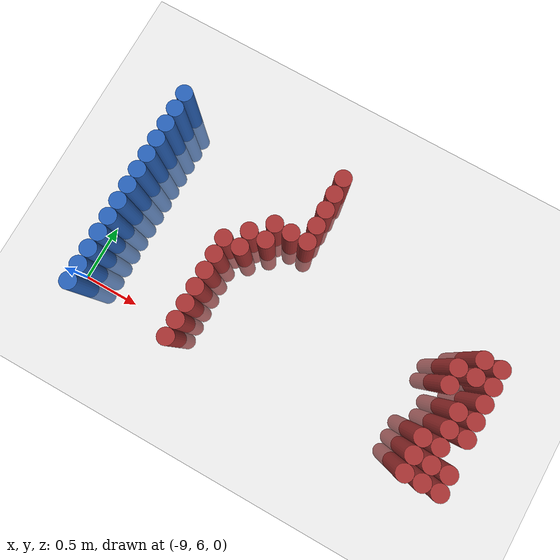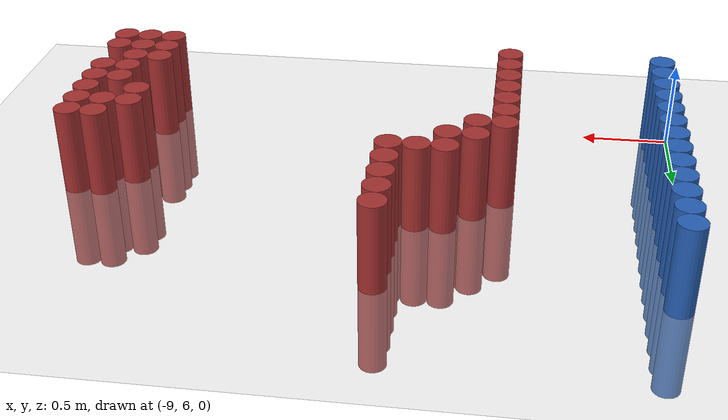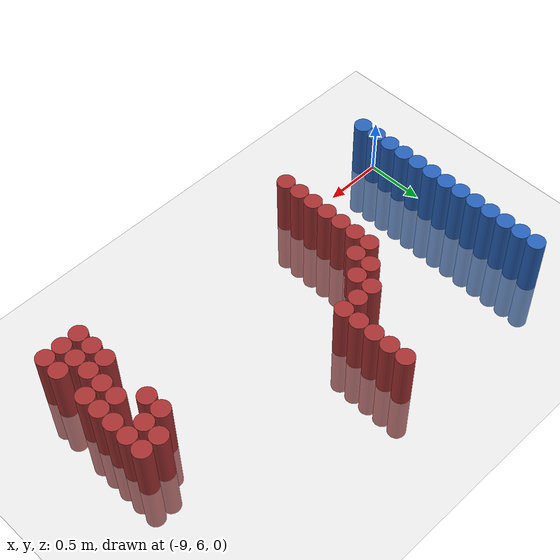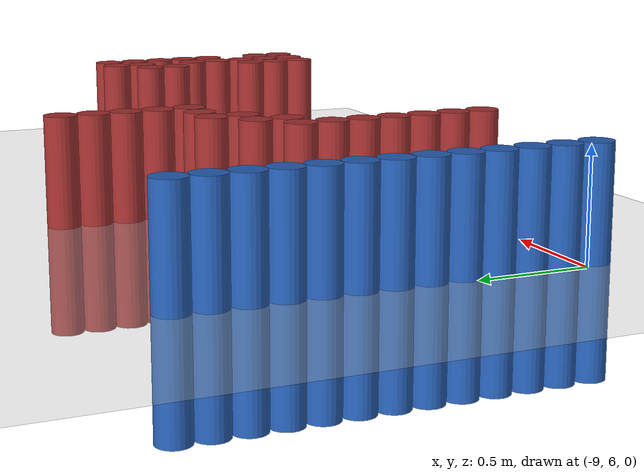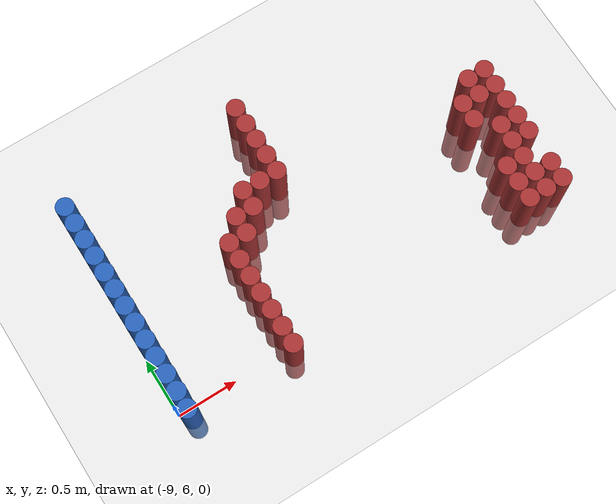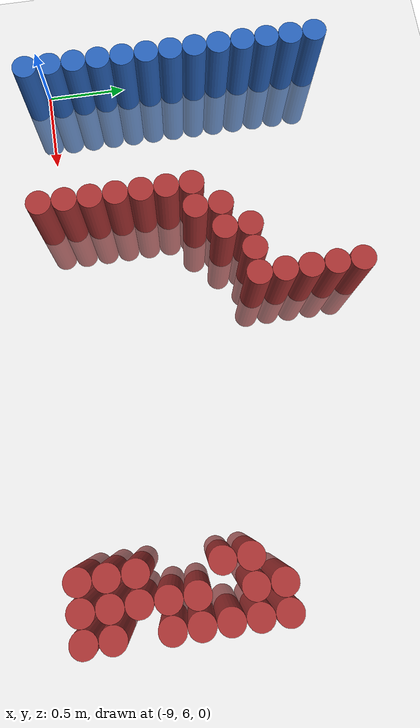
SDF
<sdf version="1.6">
 <world name="default">
  <model name="ground_plane">
   <static>1</static>
   <link name="link">
    <collision name="collision">
     <geometry><plane><normal>0 0 1</normal><size>100 100</size></plane></geometry>
     <surface><friction><ode><mu>100</mu><mu2>50</mu2></ode></friction></surface>
    </collision>
    <visual name="visual">
     <cast_shadows>0</cast_shadows>
     <geometry><plane><normal>0 0 1</normal><size>100 100</size></plane></geometry>
     <material>
      <script><uri>file://media/materials/scripts/gazebo.material</uri><name>Gazebo/Grey</name></script>
     </material>
    </visual>
   </link>
  </model>
  <model name="unit_cylinder_130">
   <static>1</static>
   <pose>-8.925000 5.925000 0.000000 0.000000 0.000000 0.000000</pose>
   <link name="link">
    <inertial>
     <mass>1</mass>
     <inertia><ixx>0.145833</ixx><ixy>0</ixy><ixz>0</ixz><iyy>0.145833</iyy><iyz>0</iyz><izz>0.125</izz></inertia>
    </inertial>
    <collision name="collision">
     <geometry><cylinder><radius>0.075000</radius><length>1</length></cylinder></geometry>
    </collision>
    <visual name="visual">
     <geometry><cylinder><radius>0.075000</radius><length>1</length></cylinder></geometry>
     <material>
      <ambient>0.152000 0.379000 0.720000 1</ambient>
      <diffuse>0.152000 0.379000 0.720000 1</diffuse>
     </material>
     <material>
      <script><name>Gazebo/Grey</name><uri>file://media/materials/scripts/gazebo.material</uri></script>
     </material>
    </visual>
   </link>
  </model>
  <model name="unit_cylinder_131">
   <static>1</static>
   <pose>-8.925000 6.075000 0.000000 0.000000 0.000000 0.000000</pose>
   <link name="link">
    <inertial>
     <mass>1</mass>
     <inertia><ixx>0.145833</ixx><ixy>0</ixy><ixz>0</ixz><iyy>0.145833</iyy><iyz>0</iyz><izz>0.125</izz></inertia>
    </inertial>
    <collision name="collision">
     <geometry><cylinder><radius>0.075000</radius><length>1</length></cylinder></geometry>
    </collision>
    <visual name="visual">
     <geometry><cylinder><radius>0.075000</radius><length>1</length></cylinder></geometry>
     <material>
      <ambient>0.152000 0.379000 0.720000 1</ambient>
      <diffuse>0.152000 0.379000 0.720000 1</diffuse>
     </material>
     <material>
      <script><name>Gazebo/Grey</name><uri>file://media/materials/scripts/gazebo.material</uri></script>
     </material>
    </visual>
   </link>
  </model>
  <model name="unit_cylinder_132">
   <static>1</static>
   <pose>-8.925000 6.225000 0.000000 0.000000 0.000000 0.000000</pose>
   <link name="link">
    <inertial>
     <mass>1</mass>
     <inertia><ixx>0.145833</ixx><ixy>0</ixy><ixz>0</ixz><iyy>0.145833</iyy><iyz>0</iyz><izz>0.125</izz></inertia>
    </inertial>
    <collision name="collision">
     <geometry><cylinder><radius>0.075000</radius><length>1</length></cylinder></geometry>
    </collision>
    <visual name="visual">
     <geometry><cylinder><radius>0.075000</radius><length>1</length></cylinder></geometry>
     <material>
      <ambient>0.152000 0.379000 0.720000 1</ambient>
      <diffuse>0.152000 0.379000 0.720000 1</diffuse>
     </material>
     <material>
      <script><name>Gazebo/Grey</name><uri>file://media/materials/scripts/gazebo.material</uri></script>
     </material>
    </visual>
   </link>
  </model>
  <model name="unit_cylinder_133">
   <static>1</static>
   <pose>-8.925000 6.375000 0.000000 0.000000 0.000000 0.000000</pose>
   <link name="link">
    <inertial>
     <mass>1</mass>
     <inertia><ixx>0.145833</ixx><ixy>0</ixy><ixz>0</ixz><iyy>0.145833</iyy><iyz>0</iyz><izz>0.125</izz></inertia>
    </inertial>
    <collision name="collision">
     <geometry><cylinder><radius>0.075000</radius><length>1</length></cylinder></geometry>
    </collision>
    <visual name="visual">
     <geometry><cylinder><radius>0.075000</radius><length>1</length></cylinder></geometry>
     <material>
      <ambient>0.152000 0.379000 0.720000 1</ambient>
      <diffuse>0.152000 0.379000 0.720000 1</diffuse>
     </material>
     <material>
      <script><name>Gazebo/Grey</name><uri>file://media/materials/scripts/gazebo.material</uri></script>
     </material>
    </visual>
   </link>
  </model>
  <model name="unit_cylinder_134">
   <static>1</static>
   <pose>-8.925000 6.525000 0.000000 0.000000 0.000000 0.000000</pose>
   <link name="link">
    <inertial>
     <mass>1</mass>
     <inertia><ixx>0.145833</ixx><ixy>0</ixy><ixz>0</ixz><iyy>0.145833</iyy><iyz>0</iyz><izz>0.125</izz></inertia>
    </inertial>
    <collision name="collision">
     <geometry><cylinder><radius>0.075000</radius><length>1</length></cylinder></geometry>
    </collision>
    <visual name="visual">
     <geometry><cylinder><radius>0.075000</radius><length>1</length></cylinder></geometry>
     <material>
      <ambient>0.152000 0.379000 0.720000 1</ambient>
      <diffuse>0.152000 0.379000 0.720000 1</diffuse>
     </material>
     <material>
      <script><name>Gazebo/Grey</name><uri>file://media/materials/scripts/gazebo.material</uri></script>
     </material>
    </visual>
   </link>
  </model>
  <model name="unit_cylinder_135">
   <static>1</static>
   <pose>-8.925000 6.675000 0.000000 0.000000 0.000000 0.000000</pose>
   <link name="link">
    <inertial>
     <mass>1</mass>
     <inertia><ixx>0.145833</ixx><ixy>0</ixy><ixz>0</ixz><iyy>0.145833</iyy><iyz>0</iyz><izz>0.125</izz></inertia>
    </inertial>
    <collision name="collision">
     <geometry><cylinder><radius>0.075000</radius><length>1</length></cylinder></geometry>
    </collision>
    <visual name="visual">
     <geometry><cylinder><radius>0.075000</radius><length>1</length></cylinder></geometry>
     <material>
      <ambient>0.152000 0.379000 0.720000 1</ambient>
      <diffuse>0.152000 0.379000 0.720000 1</diffuse>
     </material>
     <material>
      <script><name>Gazebo/Grey</name><uri>file://media/materials/scripts/gazebo.material</uri></script>
     </material>
    </visual>
   </link>
  </model>
  <model name="unit_cylinder_136">
   <static>1</static>
   <pose>-8.925000 6.825000 0.000000 0.000000 0.000000 0.000000</pose>
   <link name="link">
    <inertial>
     <mass>1</mass>
     <inertia><ixx>0.145833</ixx><ixy>0</ixy><ixz>0</ixz><iyy>0.145833</iyy><iyz>0</iyz><izz>0.125</izz></inertia>
    </inertial>
    <collision name="collision">
     <geometry><cylinder><radius>0.075000</radius><length>1</length></cylinder></geometry>
    </collision>
    <visual name="visual">
     <geometry><cylinder><radius>0.075000</radius><length>1</length></cylinder></geometry>
     <material>
      <ambient>0.152000 0.379000 0.720000 1</ambient>
      <diffuse>0.152000 0.379000 0.720000 1</diffuse>
     </material>
     <material>
      <script><name>Gazebo/Grey</name><uri>file://media/materials/scripts/gazebo.material</uri></script>
     </material>
    </visual>
   </link>
  </model>
  <model name="unit_cylinder_137">
   <static>1</static>
   <pose>-8.925000 6.975000 0.000000 0.000000 0.000000 0.000000</pose>
   <link name="link">
    <inertial>
     <mass>1</mass>
     <inertia><ixx>0.145833</ixx><ixy>0</ixy><ixz>0</ixz><iyy>0.145833</iyy><iyz>0</iyz><izz>0.125</izz></inertia>
    </inertial>
    <collision name="collision">
     <geometry><cylinder><radius>0.075000</radius><length>1</length></cylinder></geometry>
    </collision>
    <visual name="visual">
     <geometry><cylinder><radius>0.075000</radius><length>1</length></cylinder></geometry>
     <material>
      <ambient>0.152000 0.379000 0.720000 1</ambient>
      <diffuse>0.152000 0.379000 0.720000 1</diffuse>
     </material>
     <material>
      <script><name>Gazebo/Grey</name><uri>file://media/materials/scripts/gazebo.material</uri></script>
     </material>
    </visual>
   </link>
  </model>
  <model name="unit_cylinder_138">
   <static>1</static>
   <pose>-8.925000 7.125000 0.000000 0.000000 0.000000 0.000000</pose>
   <link name="link">
    <inertial>
     <mass>1</mass>
     <inertia><ixx>0.145833</ixx><ixy>0</ixy><ixz>0</ixz><iyy>0.145833</iyy><iyz>0</iyz><izz>0.125</izz></inertia>
    </inertial>
    <collision name="collision">
     <geometry><cylinder><radius>0.075000</radius><length>1</length></cylinder></geometry>
    </collision>
    <visual name="visual">
     <geometry><cylinder><radius>0.075000</radius><length>1</length></cylinder></geometry>
     <material>
      <ambient>0.152000 0.379000 0.720000 1</ambient>
      <diffuse>0.152000 0.379000 0.720000 1</diffuse>
     </material>
     <material>
      <script><name>Gazebo/Grey</name><uri>file://media/materials/scripts/gazebo.material</uri></script>
     </material>
    </visual>
   </link>
  </model>
  <model name="unit_cylinder_139">
   <static>1</static>
   <pose>-8.925000 7.275000 0.000000 0.000000 0.000000 0.000000</pose>
   <link name="link">
    <inertial>
     <mass>1</mass>
     <inertia><ixx>0.145833</ixx><ixy>0</ixy><ixz>0</ixz><iyy>0.145833</iyy><iyz>0</iyz><izz>0.125</izz></inertia>
    </inertial>
    <collision name="collision">
     <geometry><cylinder><radius>0.075000</radius><length>1</length></cylinder></geometry>
    </collision>
    <visual name="visual">
     <geometry><cylinder><radius>0.075000</radius><length>1</length></cylinder></geometry>
     <material>
      <ambient>0.152000 0.379000 0.720000 1</ambient>
      <diffuse>0.152000 0.379000 0.720000 1</diffuse>
     </material>
     <material>
      <script><name>Gazebo/Grey</name><uri>file://media/materials/scripts/gazebo.material</uri></script>
     </material>
    </visual>
   </link>
  </model>
  <model name="unit_cylinder_140">
   <static>1</static>
   <pose>-8.925000 7.425000 0.000000 0.000000 0.000000 0.000000</pose>
   <link name="link">
    <inertial>
     <mass>1</mass>
     <inertia><ixx>0.145833</ixx><ixy>0</ixy><ixz>0</ixz><iyy>0.145833</iyy><iyz>0</iyz><izz>0.125</izz></inertia>
    </inertial>
    <collision name="collision">
     <geometry><cylinder><radius>0.075000</radius><length>1</length></cylinder></geometry>
    </collision>
    <visual name="visual">
     <geometry><cylinder><radius>0.075000</radius><length>1</length></cylinder></geometry>
     <material>
      <ambient>0.152000 0.379000 0.720000 1</ambient>
      <diffuse>0.152000 0.379000 0.720000 1</diffuse>
     </material>
     <material>
      <script><name>Gazebo/Grey</name><uri>file://media/materials/scripts/gazebo.material</uri></script>
     </material>
    </visual>
   </link>
  </model>
  <model name="unit_cylinder_141">
   <static>1</static>
   <pose>-8.925000 7.575000 0.000000 0.000000 0.000000 0.000000</pose>
   <link name="link">
    <inertial>
     <mass>1</mass>
     <inertia><ixx>0.145833</ixx><ixy>0</ixy><ixz>0</ixz><iyy>0.145833</iyy><iyz>0</iyz><izz>0.125</izz></inertia>
    </inertial>
    <collision name="collision">
     <geometry><cylinder><radius>0.075000</radius><length>1</length></cylinder></geometry>
    </collision>
    <visual name="visual">
     <geometry><cylinder><radius>0.075000</radius><length>1</length></cylinder></geometry>
     <material>
      <ambient>0.152000 0.379000 0.720000 1</ambient>
      <diffuse>0.152000 0.379000 0.720000 1</diffuse>
     </material>
     <material>
      <script><name>Gazebo/Grey</name><uri>file://media/materials/scripts/gazebo.material</uri></script>
     </material>
    </visual>
   </link>
  </model>
  <model name="unit_cylinder_142">
   <static>1</static>
   <pose>-8.925000 7.725000 0.000000 0.000000 0.000000 0.000000</pose>
   <link name="link">
    <inertial>
     <mass>1</mass>
     <inertia><ixx>0.145833</ixx><ixy>0</ixy><ixz>0</ixz><iyy>0.145833</iyy><iyz>0</iyz><izz>0.125</izz></inertia>
    </inertial>
    <collision name="collision">
     <geometry><cylinder><radius>0.075000</radius><length>1</length></cylinder></geometry>
    </collision>
    <visual name="visual">
     <geometry><cylinder><radius>0.075000</radius><length>1</length></cylinder></geometry>
     <material>
      <ambient>0.152000 0.379000 0.720000 1</ambient>
      <diffuse>0.152000 0.379000 0.720000 1</diffuse>
     </material>
     <material>
      <script><name>Gazebo/Grey</name><uri>file://media/materials/scripts/gazebo.material</uri></script>
     </material>
    </visual>
   </link>
  </model>
  <model name="unit_cylinder_170">
   <static>1</static>
   <pose>-8.025000 5.925000 0.000000 0.000000 0.000000 0.000000</pose>
   <link name="link">
    <inertial>
     <mass>1</mass>
     <inertia><ixx>0.145833</ixx><ixy>0</ixy><ixz>0</ixz><iyy>0.145833</iyy><iyz>0</iyz><izz>0.125</izz></inertia>
    </inertial>
    <collision name="collision">
     <geometry><cylinder><radius>0.075000</radius><length>1</length></cylinder></geometry>
    </collision>
    <visual name="visual">
     <geometry><cylinder><radius>0.075000</radius><length>1</length></cylinder></geometry>
     <material>
      <ambient>0.648000 0.192000 0.192000 1</ambient>
      <diffuse>0.648000 0.192000 0.192000 1</diffuse>
     </material>
     <material>
      <script><name>Gazebo/Grey</name><uri>file://media/materials/scripts/gazebo.material</uri></script>
     </material>
    </visual>
   </link>
  </model>
  <model name="unit_cylinder_171">
   <static>1</static>
   <pose>-8.025000 6.075000 0.000000 0.000000 0.000000 0.000000</pose>
   <link name="link">
    <inertial>
     <mass>1</mass>
     <inertia><ixx>0.145833</ixx><ixy>0</ixy><ixz>0</ixz><iyy>0.145833</iyy><iyz>0</iyz><izz>0.125</izz></inertia>
    </inertial>
    <collision name="collision">
     <geometry><cylinder><radius>0.075000</radius><length>1</length></cylinder></geometry>
    </collision>
    <visual name="visual">
     <geometry><cylinder><radius>0.075000</radius><length>1</length></cylinder></geometry>
     <material>
      <ambient>0.648000 0.192000 0.192000 1</ambient>
      <diffuse>0.648000 0.192000 0.192000 1</diffuse>
     </material>
     <material>
      <script><name>Gazebo/Grey</name><uri>file://media/materials/scripts/gazebo.material</uri></script>
     </material>
    </visual>
   </link>
  </model>
  <model name="unit_cylinder_172">
   <static>1</static>
   <pose>-8.025000 6.225000 0.000000 0.000000 0.000000 0.000000</pose>
   <link name="link">
    <inertial>
     <mass>1</mass>
     <inertia><ixx>0.145833</ixx><ixy>0</ixy><ixz>0</ixz><iyy>0.145833</iyy><iyz>0</iyz><izz>0.125</izz></inertia>
    </inertial>
    <collision name="collision">
     <geometry><cylinder><radius>0.075000</radius><length>1</length></cylinder></geometry>
    </collision>
    <visual name="visual">
     <geometry><cylinder><radius>0.075000</radius><length>1</length></cylinder></geometry>
     <material>
      <ambient>0.648000 0.192000 0.192000 1</ambient>
      <diffuse>0.648000 0.192000 0.192000 1</diffuse>
     </material>
     <material>
      <script><name>Gazebo/Grey</name><uri>file://media/materials/scripts/gazebo.material</uri></script>
     </material>
    </visual>
   </link>
  </model>
  <model name="unit_cylinder_173">
   <static>1</static>
   <pose>-8.025000 6.375000 0.000000 0.000000 0.000000 0.000000</pose>
   <link name="link">
    <inertial>
     <mass>1</mass>
     <inertia><ixx>0.145833</ixx><ixy>0</ixy><ixz>0</ixz><iyy>0.145833</iyy><iyz>0</iyz><izz>0.125</izz></inertia>
    </inertial>
    <collision name="collision">
     <geometry><cylinder><radius>0.075000</radius><length>1</length></cylinder></geometry>
    </collision>
    <visual name="visual">
     <geometry><cylinder><radius>0.075000</radius><length>1</length></cylinder></geometry>
     <material>
      <ambient>0.648000 0.192000 0.192000 1</ambient>
      <diffuse>0.648000 0.192000 0.192000 1</diffuse>
     </material>
     <material>
      <script><name>Gazebo/Grey</name><uri>file://media/materials/scripts/gazebo.material</uri></script>
     </material>
    </visual>
   </link>
  </model>
  <model name="unit_cylinder_174">
   <static>1</static>
   <pose>-8.025000 6.525000 0.000000 0.000000 0.000000 0.000000</pose>
   <link name="link">
    <inertial>
     <mass>1</mass>
     <inertia><ixx>0.145833</ixx><ixy>0</ixy><ixz>0</ixz><iyy>0.145833</iyy><iyz>0</iyz><izz>0.125</izz></inertia>
    </inertial>
    <collision name="collision">
     <geometry><cylinder><radius>0.075000</radius><length>1</length></cylinder></geometry>
    </collision>
    <visual name="visual">
     <geometry><cylinder><radius>0.075000</radius><length>1</length></cylinder></geometry>
     <material>
      <ambient>0.648000 0.192000 0.192000 1</ambient>
      <diffuse>0.648000 0.192000 0.192000 1</diffuse>
     </material>
     <material>
      <script><name>Gazebo/Grey</name><uri>file://media/materials/scripts/gazebo.material</uri></script>
     </material>
    </visual>
   </link>
  </model>
  <model name="unit_cylinder_175">
   <static>1</static>
   <pose>-8.025000 6.675000 0.000000 0.000000 0.000000 0.000000</pose>
   <link name="link">
    <inertial>
     <mass>1</mass>
     <inertia><ixx>0.145833</ixx><ixy>0</ixy><ixz>0</ixz><iyy>0.145833</iyy><iyz>0</iyz><izz>0.125</izz></inertia>
    </inertial>
    <collision name="collision">
     <geometry><cylinder><radius>0.075000</radius><length>1</length></cylinder></geometry>
    </collision>
    <visual name="visual">
     <geometry><cylinder><radius>0.075000</radius><length>1</length></cylinder></geometry>
     <material>
      <ambient>0.648000 0.192000 0.192000 1</ambient>
      <diffuse>0.648000 0.192000 0.192000 1</diffuse>
     </material>
     <material>
      <script><name>Gazebo/Grey</name><uri>file://media/materials/scripts/gazebo.material</uri></script>
     </material>
    </visual>
   </link>
  </model>
  <model name="unit_cylinder_176">
   <static>1</static>
   <pose>-8.025000 6.825000 0.000000 0.000000 0.000000 0.000000</pose>
   <link name="link">
    <inertial>
     <mass>1</mass>
     <inertia><ixx>0.145833</ixx><ixy>0</ixy><ixz>0</ixz><iyy>0.145833</iyy><iyz>0</iyz><izz>0.125</izz></inertia>
    </inertial>
    <collision name="collision">
     <geometry><cylinder><radius>0.075000</radius><length>1</length></cylinder></geometry>
    </collision>
    <visual name="visual">
     <geometry><cylinder><radius>0.075000</radius><length>1</length></cylinder></geometry>
     <material>
      <ambient>0.648000 0.192000 0.192000 1</ambient>
      <diffuse>0.648000 0.192000 0.192000 1</diffuse>
     </material>
     <material>
      <script><name>Gazebo/Grey</name><uri>file://media/materials/scripts/gazebo.material</uri></script>
     </material>
    </visual>
   </link>
  </model>
  <model name="unit_cylinder_178">
   <static>1</static>
   <pose>-7.875000 6.825000 0.000000 0.000000 0.000000 0.000000</pose>
   <link name="link">
    <inertial>
     <mass>1</mass>
     <inertia><ixx>0.145833</ixx><ixy>0</ixy><ixz>0</ixz><iyy>0.145833</iyy><iyz>0</iyz><izz>0.125</izz></inertia>
    </inertial>
    <collision name="collision">
     <geometry><cylinder><radius>0.075000</radius><length>1</length></cylinder></geometry>
    </collision>
    <visual name="visual">
     <geometry><cylinder><radius>0.075000</radius><length>1</length></cylinder></geometry>
     <material>
      <ambient>0.648000 0.192000 0.192000 1</ambient>
      <diffuse>0.648000 0.192000 0.192000 1</diffuse>
     </material>
     <material>
      <script><name>Gazebo/Grey</name><uri>file://media/materials/scripts/gazebo.material</uri></script>
     </material>
    </visual>
   </link>
  </model>
  <model name="unit_cylinder_179">
   <static>1</static>
   <pose>-7.875000 6.975000 0.000000 0.000000 0.000000 0.000000</pose>
   <link name="link">
    <inertial>
     <mass>1</mass>
     <inertia><ixx>0.145833</ixx><ixy>0</ixy><ixz>0</ixz><iyy>0.145833</iyy><iyz>0</iyz><izz>0.125</izz></inertia>
    </inertial>
    <collision name="collision">
     <geometry><cylinder><radius>0.075000</radius><length>1</length></cylinder></geometry>
    </collision>
    <visual name="visual">
     <geometry><cylinder><radius>0.075000</radius><length>1</length></cylinder></geometry>
     <material>
      <ambient>0.648000 0.192000 0.192000 1</ambient>
      <diffuse>0.648000 0.192000 0.192000 1</diffuse>
     </material>
     <material>
      <script><name>Gazebo/Grey</name><uri>file://media/materials/scripts/gazebo.material</uri></script>
     </material>
    </visual>
   </link>
  </model>
  <model name="unit_cylinder_181">
   <static>1</static>
   <pose>-7.725000 6.975000 0.000000 0.000000 0.000000 0.000000</pose>
   <link name="link">
    <inertial>
     <mass>1</mass>
     <inertia><ixx>0.145833</ixx><ixy>0</ixy><ixz>0</ixz><iyy>0.145833</iyy><iyz>0</iyz><izz>0.125</izz></inertia>
    </inertial>
    <collision name="collision">
     <geometry><cylinder><radius>0.075000</radius><length>1</length></cylinder></geometry>
    </collision>
    <visual name="visual">
     <geometry><cylinder><radius>0.075000</radius><length>1</length></cylinder></geometry>
     <material>
      <ambient>0.648000 0.192000 0.192000 1</ambient>
      <diffuse>0.648000 0.192000 0.192000 1</diffuse>
     </material>
     <material>
      <script><name>Gazebo/Grey</name><uri>file://media/materials/scripts/gazebo.material</uri></script>
     </material>
    </visual>
   </link>
  </model>
  <model name="unit_cylinder_182">
   <static>1</static>
   <pose>-7.725000 7.125000 0.000000 0.000000 0.000000 0.000000</pose>
   <link name="link">
    <inertial>
     <mass>1</mass>
     <inertia><ixx>0.145833</ixx><ixy>0</ixy><ixz>0</ixz><iyy>0.145833</iyy><iyz>0</iyz><izz>0.125</izz></inertia>
    </inertial>
    <collision name="collision">
     <geometry><cylinder><radius>0.075000</radius><length>1</length></cylinder></geometry>
    </collision>
    <visual name="visual">
     <geometry><cylinder><radius>0.075000</radius><length>1</length></cylinder></geometry>
     <material>
      <ambient>0.648000 0.192000 0.192000 1</ambient>
      <diffuse>0.648000 0.192000 0.192000 1</diffuse>
     </material>
     <material>
      <script><name>Gazebo/Grey</name><uri>file://media/materials/scripts/gazebo.material</uri></script>
     </material>
    </visual>
   </link>
  </model>
  <model name="unit_cylinder_184">
   <static>1</static>
   <pose>-7.575000 7.125000 0.000000 0.000000 0.000000 0.000000</pose>
   <link name="link">
    <inertial>
     <mass>1</mass>
     <inertia><ixx>0.145833</ixx><ixy>0</ixy><ixz>0</ixz><iyy>0.145833</iyy><iyz>0</iyz><izz>0.125</izz></inertia>
    </inertial>
    <collision name="collision">
     <geometry><cylinder><radius>0.075000</radius><length>1</length></cylinder></geometry>
    </collision>
    <visual name="visual">
     <geometry><cylinder><radius>0.075000</radius><length>1</length></cylinder></geometry>
     <material>
      <ambient>0.648000 0.192000 0.192000 1</ambient>
      <diffuse>0.648000 0.192000 0.192000 1</diffuse>
     </material>
     <material>
      <script><name>Gazebo/Grey</name><uri>file://media/materials/scripts/gazebo.material</uri></script>
     </material>
    </visual>
   </link>
  </model>
  <model name="unit_cylinder_186">
   <static>1</static>
   <pose>-7.425000 7.125000 0.000000 0.000000 0.000000 0.000000</pose>
   <link name="link">
    <inertial>
     <mass>1</mass>
     <inertia><ixx>0.145833</ixx><ixy>0</ixy><ixz>0</ixz><iyy>0.145833</iyy><iyz>0</iyz><izz>0.125</izz></inertia>
    </inertial>
    <collision name="collision">
     <geometry><cylinder><radius>0.075000</radius><length>1</length></cylinder></geometry>
    </collision>
    <visual name="visual">
     <geometry><cylinder><radius>0.075000</radius><length>1</length></cylinder></geometry>
     <material>
      <ambient>0.648000 0.192000 0.192000 1</ambient>
      <diffuse>0.648000 0.192000 0.192000 1</diffuse>
     </material>
     <material>
      <script><name>Gazebo/Grey</name><uri>file://media/materials/scripts/gazebo.material</uri></script>
     </material>
    </visual>
   </link>
  </model>
  <model name="unit_cylinder_187">
   <static>1</static>
   <pose>-7.425000 7.275000 0.000000 0.000000 0.000000 0.000000</pose>
   <link name="link">
    <inertial>
     <mass>1</mass>
     <inertia><ixx>0.145833</ixx><ixy>0</ixy><ixz>0</ixz><iyy>0.145833</iyy><iyz>0</iyz><izz>0.125</izz></inertia>
    </inertial>
    <collision name="collision">
     <geometry><cylinder><radius>0.075000</radius><length>1</length></cylinder></geometry>
    </collision>
    <visual name="visual">
     <geometry><cylinder><radius>0.075000</radius><length>1</length></cylinder></geometry>
     <material>
      <ambient>0.648000 0.192000 0.192000 1</ambient>
      <diffuse>0.648000 0.192000 0.192000 1</diffuse>
     </material>
     <material>
      <script><name>Gazebo/Grey</name><uri>file://media/materials/scripts/gazebo.material</uri></script>
     </material>
    </visual>
   </link>
  </model>
  <model name="unit_cylinder_188">
   <static>1</static>
   <pose>-7.425000 7.425000 0.000000 0.000000 0.000000 0.000000</pose>
   <link name="link">
    <inertial>
     <mass>1</mass>
     <inertia><ixx>0.145833</ixx><ixy>0</ixy><ixz>0</ixz><iyy>0.145833</iyy><iyz>0</iyz><izz>0.125</izz></inertia>
    </inertial>
    <collision name="collision">
     <geometry><cylinder><radius>0.075000</radius><length>1</length></cylinder></geometry>
    </collision>
    <visual name="visual">
     <geometry><cylinder><radius>0.075000</radius><length>1</length></cylinder></geometry>
     <material>
      <ambient>0.648000 0.192000 0.192000 1</ambient>
      <diffuse>0.648000 0.192000 0.192000 1</diffuse>
     </material>
     <material>
      <script><name>Gazebo/Grey</name><uri>file://media/materials/scripts/gazebo.material</uri></script>
     </material>
    </visual>
   </link>
  </model>
  <model name="unit_cylinder_189">
   <static>1</static>
   <pose>-7.425000 7.575000 0.000000 0.000000 0.000000 0.000000</pose>
   <link name="link">
    <inertial>
     <mass>1</mass>
     <inertia><ixx>0.145833</ixx><ixy>0</ixy><ixz>0</ixz><iyy>0.145833</iyy><iyz>0</iyz><izz>0.125</izz></inertia>
    </inertial>
    <collision name="collision">
     <geometry><cylinder><radius>0.075000</radius><length>1</length></cylinder></geometry>
    </collision>
    <visual name="visual">
     <geometry><cylinder><radius>0.075000</radius><length>1</length></cylinder></geometry>
     <material>
      <ambient>0.648000 0.192000 0.192000 1</ambient>
      <diffuse>0.648000 0.192000 0.192000 1</diffuse>
     </material>
     <material>
      <script><name>Gazebo/Grey</name><uri>file://media/materials/scripts/gazebo.material</uri></script>
     </material>
    </visual>
   </link>
  </model>
  <model name="unit_cylinder_190">
   <static>1</static>
   <pose>-7.425000 7.725000 0.000000 0.000000 0.000000 0.000000</pose>
   <link name="link">
    <inertial>
     <mass>1</mass>
     <inertia><ixx>0.145833</ixx><ixy>0</ixy><ixz>0</ixz><iyy>0.145833</iyy><iyz>0</iyz><izz>0.125</izz></inertia>
    </inertial>
    <collision name="collision">
     <geometry><cylinder><radius>0.075000</radius><length>1</length></cylinder></geometry>
    </collision>
    <visual name="visual">
     <geometry><cylinder><radius>0.075000</radius><length>1</length></cylinder></geometry>
     <material>
      <ambient>0.648000 0.192000 0.192000 1</ambient>
      <diffuse>0.648000 0.192000 0.192000 1</diffuse>
     </material>
     <material>
      <script><name>Gazebo/Grey</name><uri>file://media/materials/scripts/gazebo.material</uri></script>
     </material>
    </visual>
   </link>
  </model>
  <model name="unit_cylinder_222">
   <static>1</static>
   <pose>-5.925000 5.925000 0.000000 0.000000 0.000000 0.000000</pose>
   <link name="link">
    <inertial>
     <mass>1</mass>
     <inertia><ixx>0.145833</ixx><ixy>0</ixy><ixz>0</ixz><iyy>0.145833</iyy><iyz>0</iyz><izz>0.125</izz></inertia>
    </inertial>
    <collision name="collision">
     <geometry><cylinder><radius>0.075000</radius><length>1</length></cylinder></geometry>
    </collision>
    <visual name="visual">
     <geometry><cylinder><radius>0.075000</radius><length>1</length></cylinder></geometry>
     <material>
      <ambient>0.648000 0.192000 0.192000 1</ambient>
      <diffuse>0.648000 0.192000 0.192000 1</diffuse>
     </material>
     <material>
      <script><name>Gazebo/Grey</name><uri>file://media/materials/scripts/gazebo.material</uri></script>
     </material>
    </visual>
   </link>
  </model>
  <model name="unit_cylinder_223">
   <static>1</static>
   <pose>-5.925000 6.075000 0.000000 0.000000 0.000000 0.000000</pose>
   <link name="link">
    <inertial>
     <mass>1</mass>
     <inertia><ixx>0.145833</ixx><ixy>0</ixy><ixz>0</ixz><iyy>0.145833</iyy><iyz>0</iyz><izz>0.125</izz></inertia>
    </inertial>
    <collision name="collision">
     <geometry><cylinder><radius>0.075000</radius><length>1</length></cylinder></geometry>
    </collision>
    <visual name="visual">
     <geometry><cylinder><radius>0.075000</radius><length>1</length></cylinder></geometry>
     <material>
      <ambient>0.648000 0.192000 0.192000 1</ambient>
      <diffuse>0.648000 0.192000 0.192000 1</diffuse>
     </material>
     <material>
      <script><name>Gazebo/Grey</name><uri>file://media/materials/scripts/gazebo.material</uri></script>
     </material>
    </visual>
   </link>
  </model>
  <model name="unit_cylinder_224">
   <static>1</static>
   <pose>-5.925000 6.225000 0.000000 0.000000 0.000000 0.000000</pose>
   <link name="link">
    <inertial>
     <mass>1</mass>
     <inertia><ixx>0.145833</ixx><ixy>0</ixy><ixz>0</ixz><iyy>0.145833</iyy><iyz>0</iyz><izz>0.125</izz></inertia>
    </inertial>
    <collision name="collision">
     <geometry><cylinder><radius>0.075000</radius><length>1</length></cylinder></geometry>
    </collision>
    <visual name="visual">
     <geometry><cylinder><radius>0.075000</radius><length>1</length></cylinder></geometry>
     <material>
      <ambient>0.648000 0.192000 0.192000 1</ambient>
      <diffuse>0.648000 0.192000 0.192000 1</diffuse>
     </material>
     <material>
      <script><name>Gazebo/Grey</name><uri>file://media/materials/scripts/gazebo.material</uri></script>
     </material>
    </visual>
   </link>
  </model>
  <model name="unit_cylinder_225">
   <static>1</static>
   <pose>-5.925000 6.675000 0.000000 0.000000 0.000000 0.000000</pose>
   <link name="link">
    <inertial>
     <mass>1</mass>
     <inertia><ixx>0.145833</ixx><ixy>0</ixy><ixz>0</ixz><iyy>0.145833</iyy><iyz>0</iyz><izz>0.125</izz></inertia>
    </inertial>
    <collision name="collision">
     <geometry><cylinder><radius>0.075000</radius><length>1</length></cylinder></geometry>
    </collision>
    <visual name="visual">
     <geometry><cylinder><radius>0.075000</radius><length>1</length></cylinder></geometry>
     <material>
      <ambient>0.648000 0.192000 0.192000 1</ambient>
      <diffuse>0.648000 0.192000 0.192000 1</diffuse>
     </material>
     <material>
      <script><name>Gazebo/Grey</name><uri>file://media/materials/scripts/gazebo.material</uri></script>
     </material>
    </visual>
   </link>
  </model>
  <model name="unit_cylinder_226">
   <static>1</static>
   <pose>-5.925000 6.825000 0.000000 0.000000 0.000000 0.000000</pose>
   <link name="link">
    <inertial>
     <mass>1</mass>
     <inertia><ixx>0.145833</ixx><ixy>0</ixy><ixz>0</ixz><iyy>0.145833</iyy><iyz>0</iyz><izz>0.125</izz></inertia>
    </inertial>
    <collision name="collision">
     <geometry><cylinder><radius>0.075000</radius><length>1</length></cylinder></geometry>
    </collision>
    <visual name="visual">
     <geometry><cylinder><radius>0.075000</radius><length>1</length></cylinder></geometry>
     <material>
      <ambient>0.648000 0.192000 0.192000 1</ambient>
      <diffuse>0.648000 0.192000 0.192000 1</diffuse>
     </material>
     <material>
      <script><name>Gazebo/Grey</name><uri>file://media/materials/scripts/gazebo.material</uri></script>
     </material>
    </visual>
   </link>
  </model>
  <model name="unit_cylinder_237">
   <static>1</static>
   <pose>-5.775000 5.925000 0.000000 0.000000 0.000000 0.000000</pose>
   <link name="link">
    <inertial>
     <mass>1</mass>
     <inertia><ixx>0.145833</ixx><ixy>0</ixy><ixz>0</ixz><iyy>0.145833</iyy><iyz>0</iyz><izz>0.125</izz></inertia>
    </inertial>
    <collision name="collision">
     <geometry><cylinder><radius>0.075000</radius><length>1</length></cylinder></geometry>
    </collision>
    <visual name="visual">
     <geometry><cylinder><radius>0.075000</radius><length>1</length></cylinder></geometry>
     <material>
      <ambient>0.648000 0.192000 0.192000 1</ambient>
      <diffuse>0.648000 0.192000 0.192000 1</diffuse>
     </material>
     <material>
      <script><name>Gazebo/Grey</name><uri>file://media/materials/scripts/gazebo.material</uri></script>
     </material>
    </visual>
   </link>
  </model>
  <model name="unit_cylinder_238">
   <static>1</static>
   <pose>-5.775000 6.075000 0.000000 0.000000 0.000000 0.000000</pose>
   <link name="link">
    <inertial>
     <mass>1</mass>
     <inertia><ixx>0.145833</ixx><ixy>0</ixy><ixz>0</ixz><iyy>0.145833</iyy><iyz>0</iyz><izz>0.125</izz></inertia>
    </inertial>
    <collision name="collision">
     <geometry><cylinder><radius>0.075000</radius><length>1</length></cylinder></geometry>
    </collision>
    <visual name="visual">
     <geometry><cylinder><radius>0.075000</radius><length>1</length></cylinder></geometry>
     <material>
      <ambient>0.648000 0.192000 0.192000 1</ambient>
      <diffuse>0.648000 0.192000 0.192000 1</diffuse>
     </material>
     <material>
      <script><name>Gazebo/Grey</name><uri>file://media/materials/scripts/gazebo.material</uri></script>
     </material>
    </visual>
   </link>
  </model>
  <model name="unit_cylinder_239">
   <static>1</static>
   <pose>-5.775000 6.225000 0.000000 0.000000 0.000000 0.000000</pose>
   <link name="link">
    <inertial>
     <mass>1</mass>
     <inertia><ixx>0.145833</ixx><ixy>0</ixy><ixz>0</ixz><iyy>0.145833</iyy><iyz>0</iyz><izz>0.125</izz></inertia>
    </inertial>
    <collision name="collision">
     <geometry><cylinder><radius>0.075000</radius><length>1</length></cylinder></geometry>
    </collision>
    <visual name="visual">
     <geometry><cylinder><radius>0.075000</radius><length>1</length></cylinder></geometry>
     <material>
      <ambient>0.648000 0.192000 0.192000 1</ambient>
      <diffuse>0.648000 0.192000 0.192000 1</diffuse>
     </material>
     <material>
      <script><name>Gazebo/Grey</name><uri>file://media/materials/scripts/gazebo.material</uri></script>
     </material>
    </visual>
   </link>
  </model>
  <model name="unit_cylinder_240">
   <static>1</static>
   <pose>-5.775000 6.375000 0.000000 0.000000 0.000000 0.000000</pose>
   <link name="link">
    <inertial>
     <mass>1</mass>
     <inertia><ixx>0.145833</ixx><ixy>0</ixy><ixz>0</ixz><iyy>0.145833</iyy><iyz>0</iyz><izz>0.125</izz></inertia>
    </inertial>
    <collision name="collision">
     <geometry><cylinder><radius>0.075000</radius><length>1</length></cylinder></geometry>
    </collision>
    <visual name="visual">
     <geometry><cylinder><radius>0.075000</radius><length>1</length></cylinder></geometry>
     <material>
      <ambient>0.648000 0.192000 0.192000 1</ambient>
      <diffuse>0.648000 0.192000 0.192000 1</diffuse>
     </material>
     <material>
      <script><name>Gazebo/Grey</name><uri>file://media/materials/scripts/gazebo.material</uri></script>
     </material>
    </visual>
   </link>
  </model>
  <model name="unit_cylinder_241">
   <static>1</static>
   <pose>-5.775000 6.525000 0.000000 0.000000 0.000000 0.000000</pose>
   <link name="link">
    <inertial>
     <mass>1</mass>
     <inertia><ixx>0.145833</ixx><ixy>0</ixy><ixz>0</ixz><iyy>0.145833</iyy><iyz>0</iyz><izz>0.125</izz></inertia>
    </inertial>
    <collision name="collision">
     <geometry><cylinder><radius>0.075000</radius><length>1</length></cylinder></geometry>
    </collision>
    <visual name="visual">
     <geometry><cylinder><radius>0.075000</radius><length>1</length></cylinder></geometry>
     <material>
      <ambient>0.648000 0.192000 0.192000 1</ambient>
      <diffuse>0.648000 0.192000 0.192000 1</diffuse>
     </material>
     <material>
      <script><name>Gazebo/Grey</name><uri>file://media/materials/scripts/gazebo.material</uri></script>
     </material>
    </visual>
   </link>
  </model>
  <model name="unit_cylinder_242">
   <static>1</static>
   <pose>-5.775000 6.825000 0.000000 0.000000 0.000000 0.000000</pose>
   <link name="link">
    <inertial>
     <mass>1</mass>
     <inertia><ixx>0.145833</ixx><ixy>0</ixy><ixz>0</ixz><iyy>0.145833</iyy><iyz>0</iyz><izz>0.125</izz></inertia>
    </inertial>
    <collision name="collision">
     <geometry><cylinder><radius>0.075000</radius><length>1</length></cylinder></geometry>
    </collision>
    <visual name="visual">
     <geometry><cylinder><radius>0.075000</radius><length>1</length></cylinder></geometry>
     <material>
      <ambient>0.648000 0.192000 0.192000 1</ambient>
      <diffuse>0.648000 0.192000 0.192000 1</diffuse>
     </material>
     <material>
      <script><name>Gazebo/Grey</name><uri>file://media/materials/scripts/gazebo.material</uri></script>
     </material>
    </visual>
   </link>
  </model>
  <model name="unit_cylinder_243">
   <static>1</static>
   <pose>-5.775000 6.975000 0.000000 0.000000 0.000000 0.000000</pose>
   <link name="link">
    <inertial>
     <mass>1</mass>
     <inertia><ixx>0.145833</ixx><ixy>0</ixy><ixz>0</ixz><iyy>0.145833</iyy><iyz>0</iyz><izz>0.125</izz></inertia>
    </inertial>
    <collision name="collision">
     <geometry><cylinder><radius>0.075000</radius><length>1</length></cylinder></geometry>
    </collision>
    <visual name="visual">
     <geometry><cylinder><radius>0.075000</radius><length>1</length></cylinder></geometry>
     <material>
      <ambient>0.648000 0.192000 0.192000 1</ambient>
      <diffuse>0.648000 0.192000 0.192000 1</diffuse>
     </material>
     <material>
      <script><name>Gazebo/Grey</name><uri>file://media/materials/scripts/gazebo.material</uri></script>
     </material>
    </visual>
   </link>
  </model>
  <model name="unit_cylinder_248">
   <static>1</static>
   <pose>-5.625000 5.925000 0.000000 0.000000 0.000000 0.000000</pose>
   <link name="link">
    <inertial>
     <mass>1</mass>
     <inertia><ixx>0.145833</ixx><ixy>0</ixy><ixz>0</ixz><iyy>0.145833</iyy><iyz>0</iyz><izz>0.125</izz></inertia>
    </inertial>
    <collision name="collision">
     <geometry><cylinder><radius>0.075000</radius><length>1</length></cylinder></geometry>
    </collision>
    <visual name="visual">
     <geometry><cylinder><radius>0.075000</radius><length>1</length></cylinder></geometry>
     <material>
      <ambient>0.648000 0.192000 0.192000 1</ambient>
      <diffuse>0.648000 0.192000 0.192000 1</diffuse>
     </material>
     <material>
      <script><name>Gazebo/Grey</name><uri>file://media/materials/scripts/gazebo.material</uri></script>
     </material>
    </visual>
   </link>
  </model>
  <model name="unit_cylinder_249">
   <static>1</static>
   <pose>-5.625000 6.075000 0.000000 0.000000 0.000000 0.000000</pose>
   <link name="link">
    <inertial>
     <mass>1</mass>
     <inertia><ixx>0.145833</ixx><ixy>0</ixy><ixz>0</ixz><iyy>0.145833</iyy><iyz>0</iyz><izz>0.125</izz></inertia>
    </inertial>
    <collision name="collision">
     <geometry><cylinder><radius>0.075000</radius><length>1</length></cylinder></geometry>
    </collision>
    <visual name="visual">
     <geometry><cylinder><radius>0.075000</radius><length>1</length></cylinder></geometry>
     <material>
      <ambient>0.648000 0.192000 0.192000 1</ambient>
      <diffuse>0.648000 0.192000 0.192000 1</diffuse>
     </material>
     <material>
      <script><name>Gazebo/Grey</name><uri>file://media/materials/scripts/gazebo.material</uri></script>
     </material>
    </visual>
   </link>
  </model>
  <model name="unit_cylinder_250">
   <static>1</static>
   <pose>-5.625000 6.375000 0.000000 0.000000 0.000000 0.000000</pose>
   <link name="link">
    <inertial>
     <mass>1</mass>
     <inertia><ixx>0.145833</ixx><ixy>0</ixy><ixz>0</ixz><iyy>0.145833</iyy><iyz>0</iyz><izz>0.125</izz></inertia>
    </inertial>
    <collision name="collision">
     <geometry><cylinder><radius>0.075000</radius><length>1</length></cylinder></geometry>
    </collision>
    <visual name="visual">
     <geometry><cylinder><radius>0.075000</radius><length>1</length></cylinder></geometry>
     <material>
      <ambient>0.648000 0.192000 0.192000 1</ambient>
      <diffuse>0.648000 0.192000 0.192000 1</diffuse>
     </material>
     <material>
      <script><name>Gazebo/Grey</name><uri>file://media/materials/scripts/gazebo.material</uri></script>
     </material>
    </visual>
   </link>
  </model>
  <model name="unit_cylinder_251">
   <static>1</static>
   <pose>-5.625000 6.525000 0.000000 0.000000 0.000000 0.000000</pose>
   <link name="link">
    <inertial>
     <mass>1</mass>
     <inertia><ixx>0.145833</ixx><ixy>0</ixy><ixz>0</ixz><iyy>0.145833</iyy><iyz>0</iyz><izz>0.125</izz></inertia>
    </inertial>
    <collision name="collision">
     <geometry><cylinder><radius>0.075000</radius><length>1</length></cylinder></geometry>
    </collision>
    <visual name="visual">
     <geometry><cylinder><radius>0.075000</radius><length>1</length></cylinder></geometry>
     <material>
      <ambient>0.648000 0.192000 0.192000 1</ambient>
      <diffuse>0.648000 0.192000 0.192000 1</diffuse>
     </material>
     <material>
      <script><name>Gazebo/Grey</name><uri>file://media/materials/scripts/gazebo.material</uri></script>
     </material>
    </visual>
   </link>
  </model>
  <model name="unit_cylinder_252">
   <static>1</static>
   <pose>-5.625000 6.675000 0.000000 0.000000 0.000000 0.000000</pose>
   <link name="link">
    <inertial>
     <mass>1</mass>
     <inertia><ixx>0.145833</ixx><ixy>0</ixy><ixz>0</ixz><iyy>0.145833</iyy><iyz>0</iyz><izz>0.125</izz></inertia>
    </inertial>
    <collision name="collision">
     <geometry><cylinder><radius>0.075000</radius><length>1</length></cylinder></geometry>
    </collision>
    <visual name="visual">
     <geometry><cylinder><radius>0.075000</radius><length>1</length></cylinder></geometry>
     <material>
      <ambient>0.648000 0.192000 0.192000 1</ambient>
      <diffuse>0.648000 0.192000 0.192000 1</diffuse>
     </material>
     <material>
      <script><name>Gazebo/Grey</name><uri>file://media/materials/scripts/gazebo.material</uri></script>
     </material>
    </visual>
   </link>
  </model>
  <model name="unit_cylinder_253">
   <static>1</static>
   <pose>-5.625000 6.825000 0.000000 0.000000 0.000000 0.000000</pose>
   <link name="link">
    <inertial>
     <mass>1</mass>
     <inertia><ixx>0.145833</ixx><ixy>0</ixy><ixz>0</ixz><iyy>0.145833</iyy><iyz>0</iyz><izz>0.125</izz></inertia>
    </inertial>
    <collision name="collision">
     <geometry><cylinder><radius>0.075000</radius><length>1</length></cylinder></geometry>
    </collision>
    <visual name="visual">
     <geometry><cylinder><radius>0.075000</radius><length>1</length></cylinder></geometry>
     <material>
      <ambient>0.648000 0.192000 0.192000 1</ambient>
      <diffuse>0.648000 0.192000 0.192000 1</diffuse>
     </material>
     <material>
      <script><name>Gazebo/Grey</name><uri>file://media/materials/scripts/gazebo.material</uri></script>
     </material>
    </visual>
   </link>
  </model>
  <model name="unit_cylinder_254">
   <static>1</static>
   <pose>-5.625000 6.975000 0.000000 0.000000 0.000000 0.000000</pose>
   <link name="link">
    <inertial>
     <mass>1</mass>
     <inertia><ixx>0.145833</ixx><ixy>0</ixy><ixz>0</ixz><iyy>0.145833</iyy><iyz>0</iyz><izz>0.125</izz></inertia>
    </inertial>
    <collision name="collision">
     <geometry><cylinder><radius>0.075000</radius><length>1</length></cylinder></geometry>
    </collision>
    <visual name="visual">
     <geometry><cylinder><radius>0.075000</radius><length>1</length></cylinder></geometry>
     <material>
      <ambient>0.648000 0.192000 0.192000 1</ambient>
      <diffuse>0.648000 0.192000 0.192000 1</diffuse>
     </material>
     <material>
      <script><name>Gazebo/Grey</name><uri>file://media/materials/scripts/gazebo.material</uri></script>
     </material>
    </visual>
   </link>
  </model>
 </world>
</sdf>
